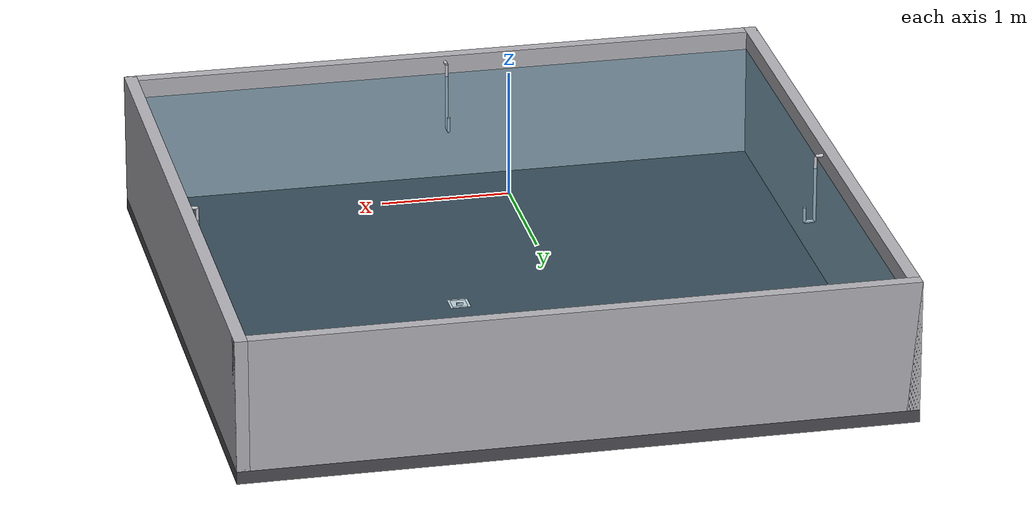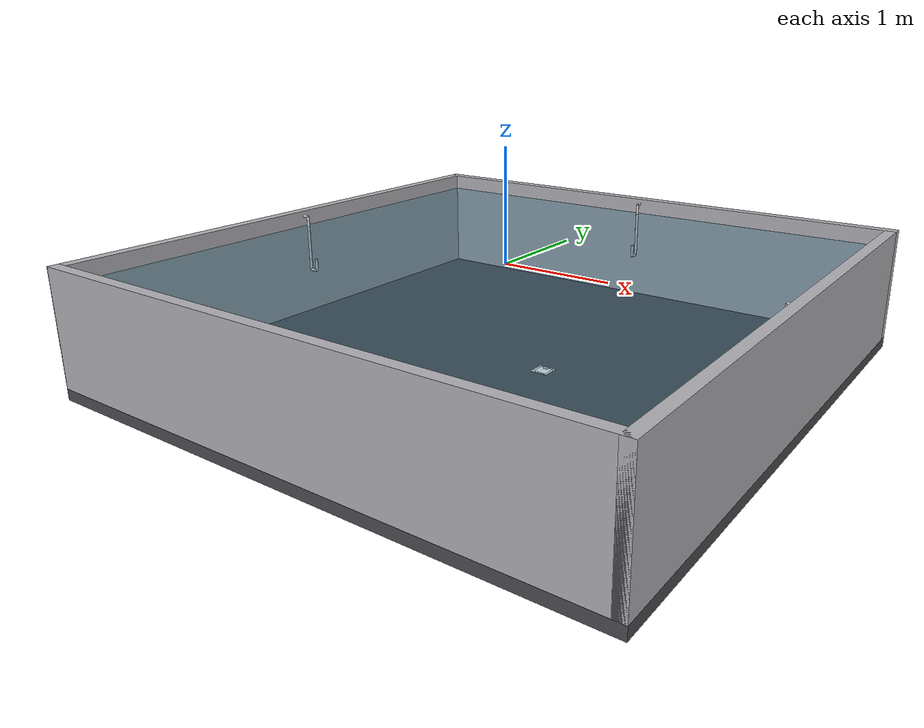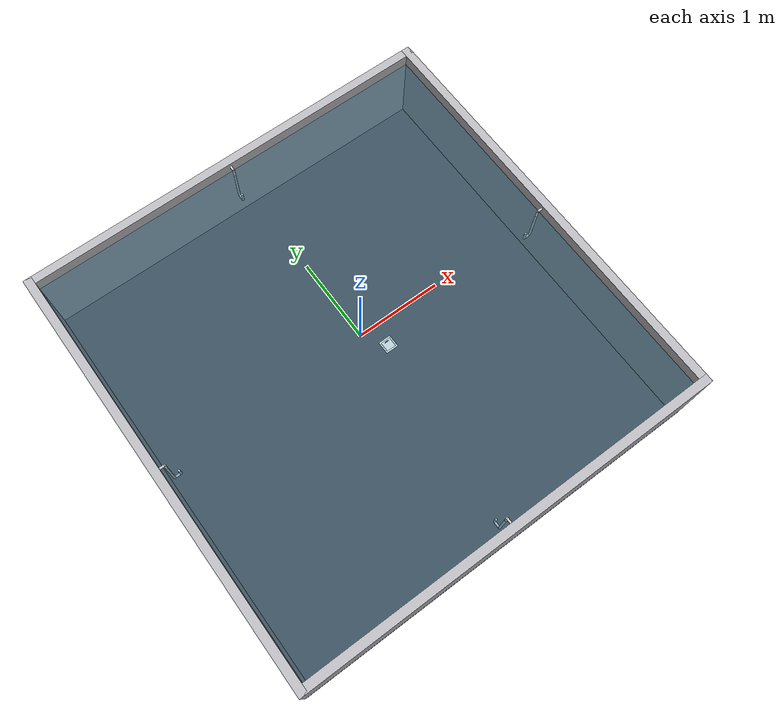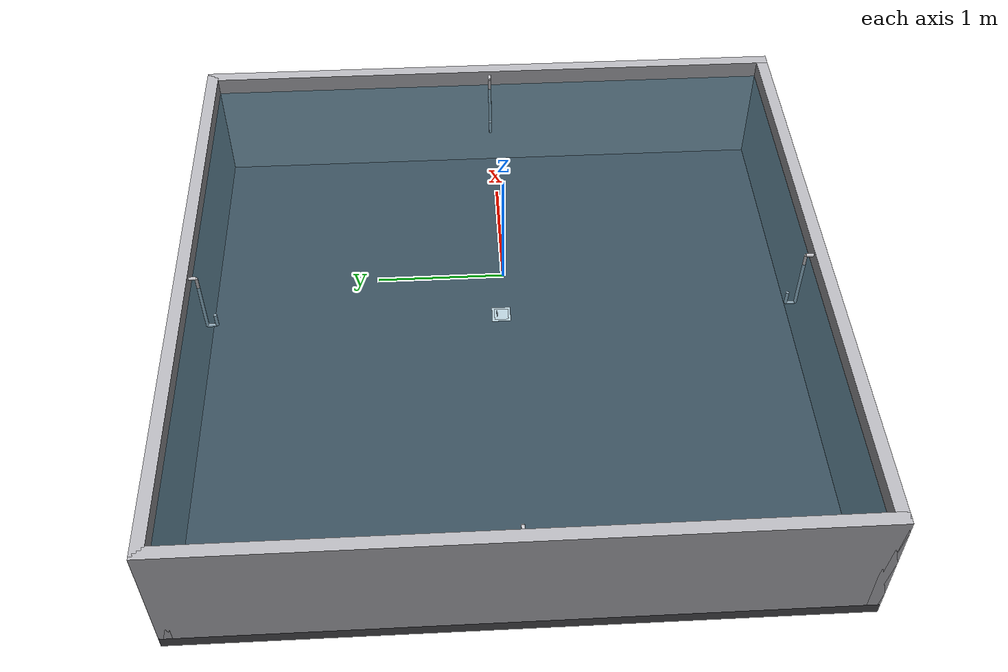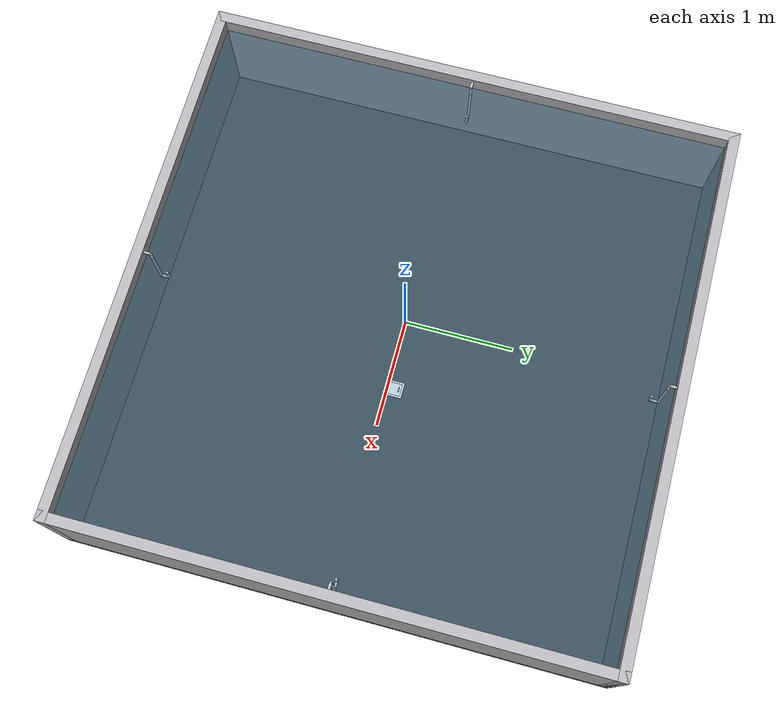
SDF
<?xml version="1.0" ?>
<sdf version="1.9">
  <world name="kki_arena">

    <physics name="1ms" type="ignored">
      <max_step_size>0.001</max_step_size>
      <real_time_factor>1.0</real_time_factor>
    </physics>

    <plugin filename="gz-sim-physics-system"
            name="gz::sim::systems::Physics">
      <engine>
        <filename>gz-physics-dartsim-plugin</filename>
      </engine>
      <dart>
        <collision_detector>bullet</collision_detector>
      </dart>
    </plugin>
    <plugin filename="gz-sim-user-commands-system"
            name="gz::sim::systems::UserCommands"/>
    <plugin filename="gz-sim-scene-broadcaster-system"
            name="gz::sim::systems::SceneBroadcaster"/>
    <plugin filename="gz-sim-contact-system"
            name="gz::sim::systems::Contact"/>

    <!-- Sensor Milestone 3: IMU + kamera (render). -->
    <plugin filename="gz-sim-imu-system"
            name="gz::sim::systems::Imu"/>
    <plugin filename="gz-sim-sensors-system"
            name="gz::sim::systems::Sensors">
      <render_engine>ogre2</render_engine>
    </plugin>

    <plugin filename="gz-sim-buoyancy-system"
            name="gz::sim::systems::Buoyancy">
      <graded_buoyancy>
        <default_density>1000.0</default_density>
        <density_change>
          <above_depth>0.0</above_depth>
          <density>1.0</density>
        </density_change>
      </graded_buoyancy>
    </plugin>

    <scene>
      <ambient>0.4 0.4 0.4 1</ambient>
      <background>0.1 0.2 0.35 1</background>
      <grid>false</grid>
    </scene>

    <light type="directional" name="sun">
      <cast_shadows>true</cast_shadows>
      <pose>0 0 10 0 0 0</pose>
      <diffuse>0.9 0.9 0.9 1</diffuse>
      <specular>0.2 0.2 0.2 1</specular>
      <direction>-0.3 0.2 -0.9</direction>
    </light>

    <!-- ================= Cangkang kolam: lantai + 4 dinding ================= -->
    <!-- Interior 5 x 5 m; muka dalam dinding di x = +/-2.5, y = +/-2.5.
         Dinding tebal 0.1 m, tinggi 1.05 m (dari dasar -0.9 sampai freeboard +0.15). -->
    <model name="pool">
      <static>true</static>

      <!-- Lantai: permukaan atas di z = -0.9. -->
      <link name="floor">
        <pose>0 0 -0.95 0 0 0</pose>
        <collision name="floor_collision">
          <geometry><box><size>5.2 5.2 0.1</size></box></geometry>
        </collision>
        <visual name="floor_visual">
          <geometry><box><size>5.2 5.2 0.1</size></box></geometry>
          <material>
            <ambient>0.20 0.20 0.22 1</ambient>
            <diffuse>0.30 0.30 0.32 1</diffuse>
          </material>
        </visual>
      </link>

      <!-- Dinding +X (muka dalam di x = 2.5). -->
      <link name="wall_px">
        <pose>2.55 0 -0.375 0 0 0</pose>
        <collision name="wall_px_collision">
          <geometry><box><size>0.1 5.2 1.05</size></box></geometry>
        </collision>
        <visual name="wall_px_visual">
          <geometry><box><size>0.1 5.2 1.05</size></box></geometry>
          <material>
            <ambient>0.55 0.55 0.57 1</ambient>
            <diffuse>0.70 0.70 0.72 1</diffuse>
          </material>
        </visual>
      </link>

      <!-- Dinding -X. -->
      <link name="wall_nx">
        <pose>-2.55 0 -0.375 0 0 0</pose>
        <collision name="wall_nx_collision">
          <geometry><box><size>0.1 5.2 1.05</size></box></geometry>
        </collision>
        <visual name="wall_nx_visual">
          <geometry><box><size>0.1 5.2 1.05</size></box></geometry>
          <material>
            <ambient>0.55 0.55 0.57 1</ambient>
            <diffuse>0.70 0.70 0.72 1</diffuse>
          </material>
        </visual>
      </link>

      <!-- Dinding +Y (muka dalam di y = 2.5). -->
      <link name="wall_py">
        <pose>0 2.55 -0.375 0 0 0</pose>
        <collision name="wall_py_collision">
          <geometry><box><size>5.2 0.1 1.05</size></box></geometry>
        </collision>
        <visual name="wall_py_visual">
          <geometry><box><size>5.2 0.1 1.05</size></box></geometry>
          <material>
            <ambient>0.55 0.55 0.57 1</ambient>
            <diffuse>0.70 0.70 0.72 1</diffuse>
          </material>
        </visual>
      </link>

      <!-- Dinding -Y. -->
      <link name="wall_ny">
        <pose>0 -2.55 -0.375 0 0 0</pose>
        <collision name="wall_ny_collision">
          <geometry><box><size>5.2 0.1 1.05</size></box></geometry>
        </collision>
        <visual name="wall_ny_visual">
          <geometry><box><size>5.2 0.1 1.05</size></box></geometry>
          <material>
            <ambient>0.55 0.55 0.57 1</ambient>
            <diffuse>0.70 0.70 0.72 1</diffuse>
          </material>
        </visual>
      </link>
    </model>

    <!-- Volume air visual (semi-transparan), tanpa collision. Permukaan di z = 0,
         dasar di z = -0.9. -->
    <model name="water_volume">
      <static>true</static>
      <pose>0 0 -0.45 0 0 0</pose>
      <link name="water_link">
        <visual name="water_visual">
          <geometry><box><size>5 5 0.9</size></box></geometry>
          <material>
            <ambient>0.0 0.25 0.4 0.25</ambient>
            <diffuse>0.0 0.35 0.5 0.25</diffuse>
          </material>
          <transparency>0.75</transparency>
        </visual>
      </link>
    </model>

    <light type="point" name="payload_fill">
      <cast_shadows>false</cast_shadows>
      <pose>0.4 0 -0.45 0 0 0</pose>
      <diffuse>0.9 0.9 0.9 1</diffuse>
      <specular>0.1 0.1 0.1 1</specular>
      <attenuation>
        <range>3.0</range>
        <constant>0.6</constant>
        <linear>0.15</linear>
        <quadratic>0.08</quadratic>
      </attenuation>
    </light>

    <!-- ============================ Hook / gantungan ============================ -->
    <model name="hook_d">
      <static>true</static>
      <pose>-2.5 0 0 0 0 0</pose>
      <link name="gantungan">
        <collision name="mount_collision">
          <pose>0.03 0 0.10 0 1.5708 0</pose>
          <geometry><cylinder><radius>0.013</radius><length>0.06</length></cylinder></geometry>
        </collision>
        <visual name="mount_visual">
          <pose>0.03 0 0.10 0 1.5708 0</pose>
          <geometry><cylinder><radius>0.013</radius><length>0.06</length></cylinder></geometry>
          <material><ambient>0.7 0.7 0.72 1</ambient><diffuse>0.8 0.8 0.82 1</diffuse></material>
        </visual>
        <collision name="riser_collision">
          <pose>0.06 0 -0.175 0 0 0</pose>
          <geometry><cylinder><radius>0.013</radius><length>0.55</length></cylinder></geometry>
        </collision>
        <visual name="riser_visual">
          <pose>0.06 0 -0.175 0 0 0</pose>
          <geometry><cylinder><radius>0.013</radius><length>0.55</length></cylinder></geometry>
          <material><ambient>0.7 0.7 0.72 1</ambient><diffuse>0.8 0.8 0.82 1</diffuse></material>
        </visual>
        <collision name="bottom_collision">
          <pose>0.10 0 -0.45 0 1.5708 0</pose>
          <geometry><cylinder><radius>0.013</radius><length>0.08</length></cylinder></geometry>
        </collision>
        <visual name="bottom_visual">
          <pose>0.10 0 -0.45 0 1.5708 0</pose>
          <geometry><cylinder><radius>0.013</radius><length>0.08</length></cylinder></geometry>
          <material><ambient>0.7 0.7 0.72 1</ambient><diffuse>0.8 0.8 0.82 1</diffuse></material>
        </visual>
        <collision name="tip_collision">
          <pose>0.14 0 -0.39 0 0 0</pose>
          <geometry><cylinder><radius>0.013</radius><length>0.12</length></cylinder></geometry>
        </collision>
        <visual name="tip_visual">
          <pose>0.14 0 -0.39 0 0 0</pose>
          <geometry><cylinder><radius>0.013</radius><length>0.12</length></cylinder></geometry>
          <material><ambient>0.7 0.7 0.72 1</ambient><diffuse>0.8 0.8 0.82 1</diffuse></material>
        </visual>
      </link>
    </model>

    <model name="hook_c">
      <static>true</static>
      <pose>2.5 0 0 0 0 3.14159</pose>
      <link name="gantungan">
        <collision name="mount_collision">
          <pose>0.03 0 0.10 0 1.5708 0</pose>
          <geometry><cylinder><radius>0.013</radius><length>0.06</length></cylinder></geometry>
        </collision>
        <visual name="mount_visual">
          <pose>0.03 0 0.10 0 1.5708 0</pose>
          <geometry><cylinder><radius>0.013</radius><length>0.06</length></cylinder></geometry>
          <material><ambient>0.7 0.7 0.72 1</ambient><diffuse>0.8 0.8 0.82 1</diffuse></material>
        </visual>
        <collision name="riser_collision">
          <pose>0.06 0 -0.175 0 0 0</pose>
          <geometry><cylinder><radius>0.013</radius><length>0.55</length></cylinder></geometry>
        </collision>
        <visual name="riser_visual">
          <pose>0.06 0 -0.175 0 0 0</pose>
          <geometry><cylinder><radius>0.013</radius><length>0.55</length></cylinder></geometry>
          <material><ambient>0.7 0.7 0.72 1</ambient><diffuse>0.8 0.8 0.82 1</diffuse></material>
        </visual>
        <collision name="bottom_collision">
          <pose>0.10 0 -0.45 0 1.5708 0</pose>
          <geometry><cylinder><radius>0.013</radius><length>0.08</length></cylinder></geometry>
        </collision>
        <visual name="bottom_visual">
          <pose>0.10 0 -0.45 0 1.5708 0</pose>
          <geometry><cylinder><radius>0.013</radius><length>0.08</length></cylinder></geometry>
          <material><ambient>0.7 0.7 0.72 1</ambient><diffuse>0.8 0.8 0.82 1</diffuse></material>
        </visual>
        <collision name="tip_collision">
          <pose>0.14 0 -0.39 0 0 0</pose>
          <geometry><cylinder><radius>0.013</radius><length>0.12</length></cylinder></geometry>
        </collision>
        <visual name="tip_visual">
          <pose>0.14 0 -0.39 0 0 0</pose>
          <geometry><cylinder><radius>0.013</radius><length>0.12</length></cylinder></geometry>
          <material><ambient>0.7 0.7 0.72 1</ambient><diffuse>0.8 0.8 0.82 1</diffuse></material>
        </visual>
      </link>
    </model>

    <model name="hook_a">
      <static>true</static>
      <pose>0 -2.5 0 0 0 1.5708</pose>
      <link name="gantungan">
        <collision name="mount_collision">
          <pose>0.03 0 0.10 0 1.5708 0</pose>
          <geometry><cylinder><radius>0.013</radius><length>0.06</length></cylinder></geometry>
        </collision>
        <visual name="mount_visual">
          <pose>0.03 0 0.10 0 1.5708 0</pose>
          <geometry><cylinder><radius>0.013</radius><length>0.06</length></cylinder></geometry>
          <material><ambient>0.7 0.7 0.72 1</ambient><diffuse>0.8 0.8 0.82 1</diffuse></material>
        </visual>
        <collision name="riser_collision">
          <pose>0.06 0 -0.175 0 0 0</pose>
          <geometry><cylinder><radius>0.013</radius><length>0.55</length></cylinder></geometry>
        </collision>
        <visual name="riser_visual">
          <pose>0.06 0 -0.175 0 0 0</pose>
          <geometry><cylinder><radius>0.013</radius><length>0.55</length></cylinder></geometry>
          <material><ambient>0.7 0.7 0.72 1</ambient><diffuse>0.8 0.8 0.82 1</diffuse></material>
        </visual>
        <collision name="bottom_collision">
          <pose>0.10 0 -0.45 0 1.5708 0</pose>
          <geometry><cylinder><radius>0.013</radius><length>0.08</length></cylinder></geometry>
        </collision>
        <visual name="bottom_visual">
          <pose>0.10 0 -0.45 0 1.5708 0</pose>
          <geometry><cylinder><radius>0.013</radius><length>0.08</length></cylinder></geometry>
          <material><ambient>0.7 0.7 0.72 1</ambient><diffuse>0.8 0.8 0.82 1</diffuse></material>
        </visual>
        <collision name="tip_collision">
          <pose>0.14 0 -0.39 0 0 0</pose>
          <geometry><cylinder><radius>0.013</radius><length>0.12</length></cylinder></geometry>
        </collision>
        <visual name="tip_visual">
          <pose>0.14 0 -0.39 0 0 0</pose>
          <geometry><cylinder><radius>0.013</radius><length>0.12</length></cylinder></geometry>
          <material><ambient>0.7 0.7 0.72 1</ambient><diffuse>0.8 0.8 0.82 1</diffuse></material>
        </visual>
      </link>
    </model>

    <model name="hook_b">
      <static>true</static>
      <pose>0 2.5 0 0 0 -1.5708</pose>
      <link name="gantungan">
        <collision name="mount_collision">
          <pose>0.03 0 0.10 0 1.5708 0</pose>
          <geometry><cylinder><radius>0.013</radius><length>0.06</length></cylinder></geometry>
        </collision>
        <visual name="mount_visual">
          <pose>0.03 0 0.10 0 1.5708 0</pose>
          <geometry><cylinder><radius>0.013</radius><length>0.06</length></cylinder></geometry>
          <material><ambient>0.7 0.7 0.72 1</ambient><diffuse>0.8 0.8 0.82 1</diffuse></material>
        </visual>
        <collision name="riser_collision">
          <pose>0.06 0 -0.175 0 0 0</pose>
          <geometry><cylinder><radius>0.013</radius><length>0.55</length></cylinder></geometry>
        </collision>
        <visual name="riser_visual">
          <pose>0.06 0 -0.175 0 0 0</pose>
          <geometry><cylinder><radius>0.013</radius><length>0.55</length></cylinder></geometry>
          <material><ambient>0.7 0.7 0.72 1</ambient><diffuse>0.8 0.8 0.82 1</diffuse></material>
        </visual>
        <collision name="bottom_collision">
          <pose>0.10 0 -0.45 0 1.5708 0</pose>
          <geometry><cylinder><radius>0.013</radius><length>0.08</length></cylinder></geometry>
        </collision>
        <visual name="bottom_visual">
          <pose>0.10 0 -0.45 0 1.5708 0</pose>
          <geometry><cylinder><radius>0.013</radius><length>0.08</length></cylinder></geometry>
          <material><ambient>0.7 0.7 0.72 1</ambient><diffuse>0.8 0.8 0.82 1</diffuse></material>
        </visual>
        <collision name="tip_collision">
          <pose>0.14 0 -0.39 0 0 0</pose>
          <geometry><cylinder><radius>0.013</radius><length>0.12</length></cylinder></geometry>
        </collision>
        <visual name="tip_visual">
          <pose>0.14 0 -0.39 0 0 0</pose>
          <geometry><cylinder><radius>0.013</radius><length>0.12</length></cylinder></geometry>
          <material><ambient>0.7 0.7 0.72 1</ambient><diffuse>0.8 0.8 0.82 1</diffuse></material>
        </visual>
      </link>
    </model>

    <!-- ================= Payload QR inline (non-static) ================= -->
    <model name="payload">
      <static>false</static>
      <pose>0.4 0.04 -0.894 1.5708 0 0</pose>
      <link name="payload_link">
        <inertial>
          <mass>0.3</mass>
          <inertia>
            <ixx>3.0e-4</ixx><iyy>3.0e-4</iyy><izz>1.5e-4</izz>
            <ixy>0</ixy><ixz>0</ixz><iyz>0</iyz>
          </inertia>
        </inertial>
        <collision name="body_collision">
          <geometry><box><size>0.05 0.020 0.10</size></box></geometry>
        </collision>
        <visual name="body">
          <geometry>
            <mesh><uri>model://hydroships_gazebo/media/payload_body.obj</uri></mesh>
          </geometry>
          <material>
            <ambient>0.75 0.76 0.80 1</ambient>
            <diffuse>0.82 0.83 0.86 1</diffuse>
          </material>
        </visual>
        <visual name="qr_quiet_zone">
          <pose>0 0.0006 0.04 0 0 0</pose>
          <geometry><plane><normal>0 1 0</normal><size>0.16 0.16</size></plane></geometry>
          <material>
            <ambient>1 1 1 1</ambient>
            <diffuse>1 1 1 1</diffuse>
            <specular>0 0 0 1</specular>
            <emissive>1 1 1 1</emissive>
          </material>
        </visual>
        <visual name="qr">
          <pose>0 0.0012 0.04 0 0 0</pose>
          <geometry><plane><normal>0 1 0</normal><size>0.12 0.12</size></plane></geometry>
          <material>
            <diffuse>1 1 1 1</diffuse>
            <specular>0 0 0 1</specular>
            <pbr>
              <metal>
                <albedo_map>model://hydroships_gazebo/media/qr_A.png</albedo_map>
                <emissive_map>model://hydroships_gazebo/media/qr_A.png</emissive_map>
                <metalness>0.0</metalness>
                <roughness>1.0</roughness>
              </metal>
            </pbr>
          </material>
        </visual>
      </link>
    </model>
  </world>
</sdf>
